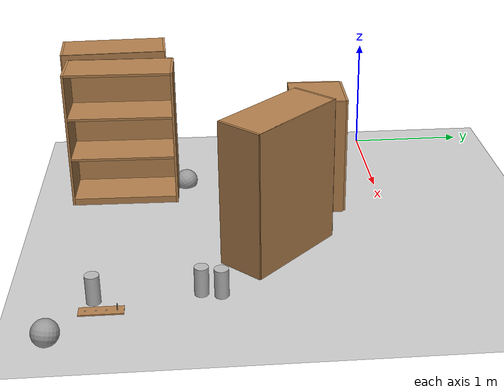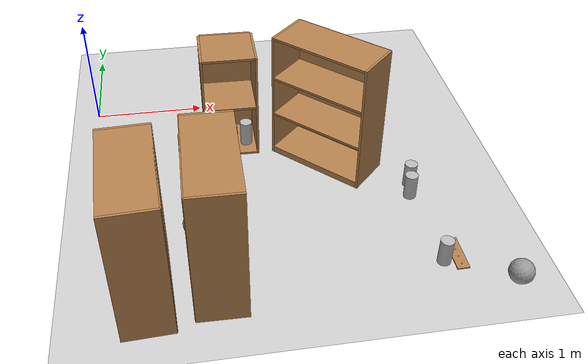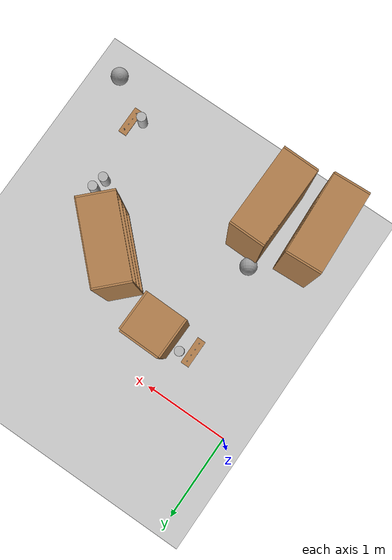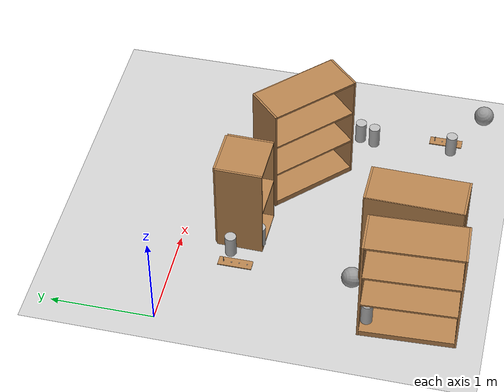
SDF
<sdf version="1.6">
 <world name="default">
  <model name="ground_plane">
   <static>1</static>
   <link name="link">
    <collision name="collision">
     <geometry><plane><normal>0 0 1</normal><size>100 100</size></plane></geometry>
     <surface><friction><ode><mu>100</mu><mu2>50</mu2></ode></friction></surface>
    </collision>
    <visual name="visual">
     <cast_shadows>0</cast_shadows>
     <geometry><plane><normal>0 0 1</normal><size>100 100</size></plane></geometry>
     <material>
      <script><uri>file://media/materials/scripts/gazebo.material</uri><name>Gazebo/Grey</name></script>
     </material>
    </visual>
   </link>
  </model>
  <model name="bookshelf_0">
   <static>1</static>
   <link name="link">
    <inertial><mass>1</mass></inertial>
    <collision name="back">
     <pose>0 0.005 0.6 0 -0 0</pose>
     <geometry><box><size>0.9 0.01 1.2</size></box></geometry>
    </collision>
    <visual name="visual1">
     <pose>0 0.005 0.6 0 -0 0</pose>
     <geometry><box><size>0.9 0.01 1.2</size></box></geometry>
     <material>
      <script><uri>file://media/materials/scripts/gazebo.material</uri><name>Gazebo/Wood</name></script>
     </material>
    </visual>
    <collision name="left_side">
     <pose>0.45 -0.195 0.6 0 -0 0</pose>
     <geometry><box><size>0.02 0.4 1.2</size></box></geometry>
    </collision>
    <visual name="visual2">
     <pose>0.45 -0.195 0.6 0 -0 0</pose>
     <geometry><box><size>0.02 0.4 1.2</size></box></geometry>
     <material>
      <script><uri>file://media/materials/scripts/gazebo.material</uri><name>Gazebo/Wood</name></script>
     </material>
    </visual>
    <collision name="right_side">
     <pose>-0.45 -0.195 0.6 0 -0 0</pose>
     <geometry><box><size>0.02 0.4 1.2</size></box></geometry>
    </collision>
    <visual name="visual3">
     <pose>-0.45 -0.195 0.6 0 -0 0</pose>
     <geometry><box><size>0.02 0.4 1.2</size></box></geometry>
     <material>
      <script><uri>file://media/materials/scripts/gazebo.material</uri><name>Gazebo/Wood</name></script>
     </material>
    </visual>
    <collision name="bottom">
     <pose>0 -0.195 0.03 0 -0 0</pose>
     <geometry><box><size>0.88 0.4 0.06</size></box></geometry>
    </collision>
    <visual name="visual4">
     <pose>0 -0.195 0.03 0 -0 0</pose>
     <geometry><box><size>0.88 0.4 0.06</size></box></geometry>
     <material>
      <script><uri>file://media/materials/scripts/gazebo.material</uri><name>Gazebo/Wood</name></script>
     </material>
    </visual>
    <collision name="top">
     <pose>0 -0.195 1.19 0 -0 0</pose>
     <geometry><box><size>0.88 0.4 0.02</size></box></geometry>
    </collision>
    <visual name="visual5">
     <pose>0 -0.195 1.19 0 -0 0</pose>
     <geometry><box><size>0.88 0.4 0.02</size></box></geometry>
     <material>
      <script><uri>file://media/materials/scripts/gazebo.material</uri><name>Gazebo/Wood</name></script>
     </material>
    </visual>
    <collision name="low_shelf">
     <pose>0 -0.195 0.43 0 -0 0</pose>
     <geometry><box><size>0.88 0.4 0.02</size></box></geometry>
    </collision>
    <visual name="visual6">
     <pose>0 -0.195 0.43 0 -0 0</pose>
     <geometry><box><size>0.88 0.4 0.02</size></box></geometry>
     <material>
      <script><uri>file://media/materials/scripts/gazebo.material</uri><name>Gazebo/Wood</name></script>
     </material>
    </visual>
    <collision name="high_shelf">
     <pose>0 -0.195 0.8 0 -0 0</pose>
     <geometry><box><size>0.88 0.4 0.02</size></box></geometry>
    </collision>
    <visual name="visual7">
     <pose>0 -0.195 0.8 0 -0 0</pose>
     <geometry><box><size>0.88 0.4 0.02</size></box></geometry>
     <material>
      <script><uri>file://media/materials/scripts/gazebo.material</uri><name>Gazebo/Wood</name></script>
     </material>
    </visual>
   </link>
   <pose>0.619209 -2.30664 0 0 0 -1.52324</pose>
  </model>
  <model name="beer_7">
   <link name="link">
    <pose>0 0 0.115 0 -0 0</pose>
    <inertial>
     <mass>0.39</mass>
     <inertia><ixx>0.00058</ixx><ixy>0</ixy><ixz>0</ixz><iyy>0.00058</iyy><iyz>0</iyz><izz>0.00019</izz></inertia>
    </inertial>
    <collision name="collision">
     <geometry><cylinder><radius>0.055</radius><length>0.23</length></cylinder></geometry>
    </collision>
    <visual name="visual">
     <geometry><cylinder><radius>0.055</radius><length>0.23</length></cylinder></geometry>
     <material>
      <script>
       <uri>model://beer/materials/scripts</uri>
       <uri>model://beer/materials/textures</uri>
       <name>Beer/Diffuse</name>
      </script>
     </material>
    </visual>
   </link>
   <pose>0.346391 -1.9342 0.059995 6.2e-05 6.2e-05 -0.62838</pose>
  </model>
  <model name="bookshelf_1">
   <static>1</static>
   <link name="link">
    <inertial><mass>1</mass></inertial>
    <collision name="back">
     <pose>0 0.005 0.6 0 -0 0</pose>
     <geometry><box><size>0.9 0.01 1.2</size></box></geometry>
    </collision>
    <visual name="visual1">
     <pose>0 0.005 0.6 0 -0 0</pose>
     <geometry><box><size>0.9 0.01 1.2</size></box></geometry>
     <material>
      <script><uri>file://media/materials/scripts/gazebo.material</uri><name>Gazebo/Wood</name></script>
     </material>
    </visual>
    <collision name="left_side">
     <pose>0.45 -0.195 0.6 0 -0 0</pose>
     <geometry><box><size>0.02 0.4 1.2</size></box></geometry>
    </collision>
    <visual name="visual2">
     <pose>0.45 -0.195 0.6 0 -0 0</pose>
     <geometry><box><size>0.02 0.4 1.2</size></box></geometry>
     <material>
      <script><uri>file://media/materials/scripts/gazebo.material</uri><name>Gazebo/Wood</name></script>
     </material>
    </visual>
    <collision name="right_side">
     <pose>-0.45 -0.195 0.6 0 -0 0</pose>
     <geometry><box><size>0.02 0.4 1.2</size></box></geometry>
    </collision>
    <visual name="visual3">
     <pose>-0.45 -0.195 0.6 0 -0 0</pose>
     <geometry><box><size>0.02 0.4 1.2</size></box></geometry>
     <material>
      <script><uri>file://media/materials/scripts/gazebo.material</uri><name>Gazebo/Wood</name></script>
     </material>
    </visual>
    <collision name="bottom">
     <pose>0 -0.195 0.03 0 -0 0</pose>
     <geometry><box><size>0.88 0.4 0.06</size></box></geometry>
    </collision>
    <visual name="visual4">
     <pose>0 -0.195 0.03 0 -0 0</pose>
     <geometry><box><size>0.88 0.4 0.06</size></box></geometry>
     <material>
      <script><uri>file://media/materials/scripts/gazebo.material</uri><name>Gazebo/Wood</name></script>
     </material>
    </visual>
    <collision name="top">
     <pose>0 -0.195 1.19 0 -0 0</pose>
     <geometry><box><size>0.88 0.4 0.02</size></box></geometry>
    </collision>
    <visual name="visual5">
     <pose>0 -0.195 1.19 0 -0 0</pose>
     <geometry><box><size>0.88 0.4 0.02</size></box></geometry>
     <material>
      <script><uri>file://media/materials/scripts/gazebo.material</uri><name>Gazebo/Wood</name></script>
     </material>
    </visual>
    <collision name="low_shelf">
     <pose>0 -0.195 0.43 0 -0 0</pose>
     <geometry><box><size>0.88 0.4 0.02</size></box></geometry>
    </collision>
    <visual name="visual6">
     <pose>0 -0.195 0.43 0 -0 0</pose>
     <geometry><box><size>0.88 0.4 0.02</size></box></geometry>
     <material>
      <script><uri>file://media/materials/scripts/gazebo.material</uri><name>Gazebo/Wood</name></script>
     </material>
    </visual>
    <collision name="high_shelf">
     <pose>0 -0.195 0.8 0 -0 0</pose>
     <geometry><box><size>0.88 0.4 0.02</size></box></geometry>
    </collision>
    <visual name="visual7">
     <pose>0 -0.195 0.8 0 -0 0</pose>
     <geometry><box><size>0.88 0.4 0.02</size></box></geometry>
     <material>
      <script><uri>file://media/materials/scripts/gazebo.material</uri><name>Gazebo/Wood</name></script>
     </material>
    </visual>
   </link>
   <pose>0.794142 -2.23341 0 0 -0 1.55315</pose>
  </model>
  <model name="cabinet_0">
   <static>1</static>
   <link name="cabinet_bottom_plate">
    <inertial>
     <pose>0 0 -1 0 -0 0</pose>
     <inertia><ixx>2.05</ixx><ixy>0</ixy><ixz>0</ixz><iyy>2.05</iyy><iyz>0</iyz><izz>2.05</izz></inertia>
     <mass>25</mass>
    </inertial>
    <collision name="cabinet_bottom_plate_geom">
     <pose>0 0 0.01 0 -0 0</pose>
     <geometry><box><size>0.45 0.45 0.02</size></box></geometry>
    </collision>
    <visual name="cabinet_bottom_plate_geom_visual">
     <pose>0 0 0.01 0 -0 0</pose>
     <geometry><box><size>0.45 0.45 0.02</size></box></geometry>
     <material>
      <script><uri>file://media/materials/scripts/gazebo.material</uri><name>Gazebo/Wood</name></script>
     </material>
    </visual>
    <collision name="cabinet_bottom_plate_geom_cabinet_back_plate">
     <pose>0.235 0 0.51 0 -0 0</pose>
     <geometry><box><size>0.02 0.45 1.02</size></box></geometry>
    </collision>
    <visual name="cabinet_bottom_plate_geom_cabinet_back_plate_visual">
     <pose>0.235 0 0.51 0 -0 0</pose>
     <geometry><box><size>0.02 0.45 1.02</size></box></geometry>
     <material>
      <script><uri>file://media/materials/scripts/gazebo.material</uri><name>Gazebo/Wood</name></script>
     </material>
    </visual>
    <collision name="cabinet_bottom_plate_geom_cabinet_left_plate">
     <pose>0 0.235 0.51 0 -0 0</pose>
     <geometry><box><size>0.45 0.02 1.02</size></box></geometry>
    </collision>
    <visual name="cabinet_bottom_plate_geom_cabinet_left_plate_visual">
     <pose>0 0.235 0.51 0 -0 0</pose>
     <geometry><box><size>0.45 0.02 1.02</size></box></geometry>
     <material>
      <script><uri>file://media/materials/scripts/gazebo.material</uri><name>Gazebo/Wood</name></script>
     </material>
    </visual>
    <collision name="cabinet_bottom_plate_geom_cabinet_middle_plate">
     <pose>0 0 0.51 0 -0 0</pose>
     <geometry><box><size>0.45 0.45 0.02</size></box></geometry>
    </collision>
    <visual name="cabinet_bottom_plate_geom_cabinet_middle_plate_visual">
     <pose>0 0 0.51 0 -0 0</pose>
     <geometry><box><size>0.45 0.45 0.02</size></box></geometry>
     <material>
      <script><uri>file://media/materials/scripts/gazebo.material</uri><name>Gazebo/Wood</name></script>
     </material>
    </visual>
    <collision name="cabinet_bottom_plate_geom_cabinet_right_plate">
     <pose>0 -0.235 0.51 0 -0 0</pose>
     <geometry><box><size>0.45 0.02 1.02</size></box></geometry>
    </collision>
    <visual name="cabinet_bottom_plate_geom_cabinet_right_plate_visual">
     <pose>0 -0.235 0.51 0 -0 0</pose>
     <geometry><box><size>0.45 0.02 1.02</size></box></geometry>
     <material>
      <script><uri>file://media/materials/scripts/gazebo.material</uri><name>Gazebo/Wood</name></script>
     </material>
    </visual>
    <collision name="cabinet_bottom_plate_geom_cabinet_top_plate">
     <pose>0 0 1.01 0 -0 0</pose>
     <geometry><box><size>0.45 0.45 0.02</size></box></geometry>
    </collision>
    <visual name="cabinet_bottom_plate_geom_cabinet_top_plate_visual">
     <pose>0 0 1.01 0 -0 0</pose>
     <geometry><box><size>0.45 0.45 0.02</size></box></geometry>
     <material>
      <script><uri>file://media/materials/scripts/gazebo.material</uri><name>Gazebo/Wood</name></script>
     </material>
    </visual>
   </link>
   <pose>1.25355 -0.582326 0 0 -0 1.55362</pose>
  </model>
  <model name="bookshelf_2">
   <static>1</static>
   <link name="link">
    <inertial><mass>1</mass></inertial>
    <collision name="back">
     <pose>0 0.005 0.6 0 -0 0</pose>
     <geometry><box><size>0.9 0.01 1.2</size></box></geometry>
    </collision>
    <visual name="visual1">
     <pose>0 0.005 0.6 0 -0 0</pose>
     <geometry><box><size>0.9 0.01 1.2</size></box></geometry>
     <material>
      <script><uri>file://media/materials/scripts/gazebo.material</uri><name>Gazebo/Wood</name></script>
     </material>
    </visual>
    <collision name="left_side">
     <pose>0.45 -0.195 0.6 0 -0 0</pose>
     <geometry><box><size>0.02 0.4 1.2</size></box></geometry>
    </collision>
    <visual name="visual2">
     <pose>0.45 -0.195 0.6 0 -0 0</pose>
     <geometry><box><size>0.02 0.4 1.2</size></box></geometry>
     <material>
      <script><uri>file://media/materials/scripts/gazebo.material</uri><name>Gazebo/Wood</name></script>
     </material>
    </visual>
    <collision name="right_side">
     <pose>-0.45 -0.195 0.6 0 -0 0</pose>
     <geometry><box><size>0.02 0.4 1.2</size></box></geometry>
    </collision>
    <visual name="visual3">
     <pose>-0.45 -0.195 0.6 0 -0 0</pose>
     <geometry><box><size>0.02 0.4 1.2</size></box></geometry>
     <material>
      <script><uri>file://media/materials/scripts/gazebo.material</uri><name>Gazebo/Wood</name></script>
     </material>
    </visual>
    <collision name="bottom">
     <pose>0 -0.195 0.03 0 -0 0</pose>
     <geometry><box><size>0.88 0.4 0.06</size></box></geometry>
    </collision>
    <visual name="visual4">
     <pose>0 -0.195 0.03 0 -0 0</pose>
     <geometry><box><size>0.88 0.4 0.06</size></box></geometry>
     <material>
      <script><uri>file://media/materials/scripts/gazebo.material</uri><name>Gazebo/Wood</name></script>
     </material>
    </visual>
    <collision name="top">
     <pose>0 -0.195 1.19 0 -0 0</pose>
     <geometry><box><size>0.88 0.4 0.02</size></box></geometry>
    </collision>
    <visual name="visual5">
     <pose>0 -0.195 1.19 0 -0 0</pose>
     <geometry><box><size>0.88 0.4 0.02</size></box></geometry>
     <material>
      <script><uri>file://media/materials/scripts/gazebo.material</uri><name>Gazebo/Wood</name></script>
     </material>
    </visual>
    <collision name="low_shelf">
     <pose>0 -0.195 0.43 0 -0 0</pose>
     <geometry><box><size>0.88 0.4 0.02</size></box></geometry>
    </collision>
    <visual name="visual6">
     <pose>0 -0.195 0.43 0 -0 0</pose>
     <geometry><box><size>0.88 0.4 0.02</size></box></geometry>
     <material>
      <script><uri>file://media/materials/scripts/gazebo.material</uri><name>Gazebo/Wood</name></script>
     </material>
    </visual>
    <collision name="high_shelf">
     <pose>0 -0.195 0.8 0 -0 0</pose>
     <geometry><box><size>0.88 0.4 0.02</size></box></geometry>
    </collision>
    <visual name="visual7">
     <pose>0 -0.195 0.8 0 -0 0</pose>
     <geometry><box><size>0.88 0.4 0.02</size></box></geometry>
     <material>
      <script><uri>file://media/materials/scripts/gazebo.material</uri><name>Gazebo/Wood</name></script>
     </material>
    </visual>
   </link>
   <pose>2.22399 -0.837147 0 0 0 -0.779094</pose>
  </model>
  <model name="beer_9">
   <link name="link">
    <pose>0 0 0.115 0 -0 0</pose>
    <inertial>
     <mass>0.39</mass>
     <inertia><ixx>0.00058</ixx><ixy>0</ixy><ixz>0</ixz><iyy>0.00058</iyy><iyz>0</iyz><izz>0.00019</izz></inertia>
    </inertial>
    <collision name="collision">
     <geometry><cylinder><radius>0.055</radius><length>0.23</length></cylinder></geometry>
    </collision>
    <visual name="visual">
     <geometry><cylinder><radius>0.055</radius><length>0.23</length></cylinder></geometry>
     <material>
      <script>
       <uri>model://beer/materials/scripts</uri>
       <uri>model://beer/materials/textures</uri>
       <name>Beer/Diffuse</name>
      </script>
     </material>
    </visual>
   </link>
   <pose>1.12296 -0.65444 0.019993 -4.3e-05 3.8e-05 -0.001916</pose>
  </model>
  <model name="beer_10">
   <link name="link">
    <pose>0 0 0.115 0 -0 0</pose>
    <inertial>
     <mass>0.39</mass>
     <inertia><ixx>0.00058</ixx><ixy>0</ixy><ixz>0</ixz><iyy>0.00058</iyy><iyz>0</iyz><izz>0.00019</izz></inertia>
    </inertial>
    <collision name="collision">
     <geometry><cylinder><radius>0.055</radius><length>0.23</length></cylinder></geometry>
    </collision>
    <visual name="visual">
     <geometry><cylinder><radius>0.055</radius><length>0.23</length></cylinder></geometry>
     <material>
      <script>
       <uri>model://beer/materials/scripts</uri>
       <uri>model://beer/materials/textures</uri>
       <name>Beer/Diffuse</name>
      </script>
     </material>
    </visual>
   </link>
   <pose>1.25396 -0.68606 0.019992 4e-05 3e-06 0.002688</pose>
  </model>
  <model name="beer_11">
   <link name="link">
    <pose>0 0 0.115 0 -0 0</pose>
    <inertial>
     <mass>0.39</mass>
     <inertia><ixx>0.00058</ixx><ixy>0</ixy><ixz>0</ixz><iyy>0.00058</iyy><iyz>0</iyz><izz>0.00019</izz></inertia>
    </inertial>
    <collision name="collision">
     <geometry><cylinder><radius>0.055</radius><length>0.23</length></cylinder></geometry>
    </collision>
    <visual name="visual">
     <geometry><cylinder><radius>0.055</radius><length>0.23</length></cylinder></geometry>
     <material>
      <script>
       <uri>model://beer/materials/scripts</uri>
       <uri>model://beer/materials/textures</uri>
       <name>Beer/Diffuse</name>
      </script>
     </material>
    </visual>
   </link>
   <pose>1.39382 -0.647695 0.019992 1.4e-05 -2.3e-05 -0.002493</pose>
  </model>
  <model name="beer_12">
   <link name="link">
    <pose>0 0 0.115 0 -0 0</pose>
    <inertial>
     <mass>0.39</mass>
     <inertia><ixx>0.00058</ixx><ixy>0</ixy><ixz>0</ixz><iyy>0.00058</iyy><iyz>0</iyz><izz>0.00019</izz></inertia>
    </inertial>
    <collision name="collision">
     <geometry><cylinder><radius>0.055</radius><length>0.23</length></cylinder></geometry>
    </collision>
    <visual name="visual">
     <geometry><cylinder><radius>0.055</radius><length>0.23</length></cylinder></geometry>
     <material>
      <script>
       <uri>model://beer/materials/scripts</uri>
       <uri>model://beer/materials/textures</uri>
       <name>Beer/Diffuse</name>
      </script>
     </material>
    </visual>
   </link>
   <pose>1.23576 -0.463244 0.020002 3e-06 -4.6e-05 0.001088</pose>
  </model>
  <model name="beer_13">
   <link name="link">
    <pose>0 0 0.115 0 -0 0</pose>
    <inertial>
     <mass>0.39</mass>
     <inertia><ixx>0.00058</ixx><ixy>0</ixy><ixz>0</ixz><iyy>0.00058</iyy><iyz>0</iyz><izz>0.00019</izz></inertia>
    </inertial>
    <collision name="collision">
     <geometry><cylinder><radius>0.055</radius><length>0.23</length></cylinder></geometry>
    </collision>
    <visual name="visual">
     <geometry><cylinder><radius>0.055</radius><length>0.23</length></cylinder></geometry>
     <material>
      <script>
       <uri>model://beer/materials/scripts</uri>
       <uri>model://beer/materials/textures</uri>
       <name>Beer/Diffuse</name>
      </script>
     </material>
    </visual>
   </link>
   <pose>1.09031 -0.759486 0.02 3e-06 7e-06 -0.059345</pose>
  </model>
  <model name="beer_14">
   <link name="link">
    <pose>0 0 0.115 0 -0 0</pose>
    <inertial>
     <mass>0.39</mass>
     <inertia><ixx>0.00058</ixx><ixy>0</ixy><ixz>0</ixz><iyy>0.00058</iyy><iyz>0</iyz><izz>0.00019</izz></inertia>
    </inertial>
    <collision name="collision">
     <geometry><cylinder><radius>0.055</radius><length>0.23</length></cylinder></geometry>
    </collision>
    <visual name="visual">
     <geometry><cylinder><radius>0.055</radius><length>0.23</length></cylinder></geometry>
     <material>
      <script>
       <uri>model://beer/materials/scripts</uri>
       <uri>model://beer/materials/textures</uri>
       <name>Beer/Diffuse</name>
      </script>
     </material>
    </visual>
   </link>
   <pose>0.931321 -0.508087 -7e-06 -1e-06 -0 -3.9e-05</pose>
  </model>
  <model name="metal_peg_board_4">
   <link name="wooden_board::base">
    <pose>0 0 0.00523 0 -0 0</pose>
    <inertial>
     <mass>0.2765</mass>
     <inertia>
      <ixx>0.0025148</ixx>
      <ixy>0</ixy>
      <ixz>0</ixz>
      <iyy>0.00024037</iyy>
      <iyz>0</iyz>
      <izz>0.00275013</izz>
     </inertia>
    </inertial>
    <collision name="collision">
     <geometry><box><size>0.1016 0.3302 0.01046</size></box></geometry>
     <surface>
      <contact>
       <poissons_ratio>0.347</poissons_ratio>
       <elastic_modulus>8.8e+09</elastic_modulus>
       <ode><kp>100000</kp><kd>100</kd><max_vel>100</max_vel><min_depth>0.001</min_depth></ode>
      </contact>
      <friction>
       <torsional>
        <coefficient>1</coefficient>
        <use_patch_radius>0</use_patch_radius>
        <surface_radius>0.01</surface_radius>
       </torsional>
      </friction>
     </surface>
    </collision>
    <visual name="visual">
     <geometry><box><size>0.1016 0.3302 0.01046</size></box></geometry>
     <material>
      <script><uri>file://media/materials/scripts/gazebo.material</uri><name>Gazebo/Wood</name></script>
     </material>
    </visual>
    <visual name="tee_nut_1">
     <pose>0 -0.116 0 0 -0 0</pose>
     <geometry><cylinder><radius>0.00635</radius><length>0.0105646</length></cylinder></geometry>
     <material>
      <script><uri>file://media/materials/scripts/gazebo.material</uri><name>Gazebo/Grey</name></script>
     </material>
    </visual>
    <visual name="tee_nut_2">
     <pose>0 -0.038 0 0 -0 0</pose>
     <geometry><cylinder><radius>0.00635</radius><length>0.0105646</length></cylinder></geometry>
     <material>
      <script><uri>file://media/materials/scripts/gazebo.material</uri><name>Gazebo/Grey</name></script>
     </material>
    </visual>
    <visual name="tee_nut_3">
     <pose>0 0.038 0 0 -0 0</pose>
     <geometry><cylinder><radius>0.00635</radius><length>0.0105646</length></cylinder></geometry>
     <material>
      <script><uri>file://media/materials/scripts/gazebo.material</uri><name>Gazebo/Grey</name></script>
     </material>
    </visual>
    <visual name="tee_nut_4">
     <pose>0 0.116 0 0 -0 0</pose>
     <geometry><cylinder><radius>0.00635</radius><length>0.0105646</length></cylinder></geometry>
     <material>
      <script><uri>file://media/materials/scripts/gazebo.material</uri><name>Gazebo/Grey</name></script>
     </material>
    </visual>
   </link>
   <link name="peg::link">
    <pose>0 0.116 0.031 0 -0 0</pose>
    <inertial>
     <mass>0.0121</mass>
     <inertia>
      <ixx>3.90898e-06</ixx>
      <ixy>0</ixy>
      <ixz>0</ixz>
      <iyy>3.90898e-06</iyy>
      <iyz>0</iyz>
      <izz>6.58845e-08</izz>
     </inertia>
    </inertial>
    <collision name="collision">
     <geometry><cylinder><radius>0.0033</radius><length>0.062</length></cylinder></geometry>
     <surface>
      <contact>
       <poissons_ratio>0.305</poissons_ratio>
       <elastic_modulus>2e+11</elastic_modulus>
       <ode><kp>100000</kp><kd>100</kd><max_vel>100</max_vel><min_depth>0.001</min_depth></ode>
      </contact>
      <friction>
       <torsional>
        <coefficient>1</coefficient>
        <use_patch_radius>0</use_patch_radius>
        <surface_radius>0.01</surface_radius>
       </torsional>
      </friction>
     </surface>
    </collision>
    <visual name="visual">
     <geometry><cylinder><radius>0.0033</radius><length>0.062</length></cylinder></geometry>
     <material>
      <script><uri>file://media/materials/scripts/gazebo.material</uri><name>Gazebo/Grey</name></script>
     </material>
    </visual>
   </link>
   <joint name="board_peg" type="revolute">
    <parent>wooden_board::base</parent>
    <child>peg::link</child>
    <axis>
     <xyz>0 0 1</xyz>
     <limit><upper>0</upper><lower>0</lower></limit>
     <use_parent_model_frame>0</use_parent_model_frame>
     <dynamics><spring_reference>0</spring_reference><spring_stiffness>0</spring_stiffness></dynamics>
    </axis>
   </joint>
   <pose>2.8753 -2.32267 -0.001004 1e-05 -0 0</pose>
  </model>
  <model name="beer_19">
   <link name="link">
    <pose>0 0 0.115 0 -0 0</pose>
    <inertial>
     <mass>0.39</mass>
     <inertia><ixx>0.00058</ixx><ixy>0</ixy><ixz>0</ixz><iyy>0.00058</iyy><iyz>0</iyz><izz>0.00019</izz></inertia>
    </inertial>
    <collision name="collision">
     <geometry><cylinder><radius>0.055</radius><length>0.23</length></cylinder></geometry>
    </collision>
    <visual name="visual">
     <geometry><cylinder><radius>0.055</radius><length>0.23</length></cylinder></geometry>
     <material>
      <script>
       <uri>model://beer/materials/scripts</uri>
       <uri>model://beer/materials/textures</uri>
       <name>Beer/Diffuse</name>
      </script>
     </material>
    </visual>
   </link>
   <pose>2.74682 -2.38617 -3e-06 1e-06 0 -1.7e-05</pose>
  </model>
  <model name="my_ball_2">
   <link name="link_0">
    <inertial>
     <mass>1</mass>
     <inertia><ixx>0.1</ixx><ixy>0</ixy><ixz>0</ixz><iyy>0.1</iyy><iyz>0</iyz><izz>0.1</izz></inertia>
    </inertial>
    <visual name="visual">
     <geometry><sphere><radius>0.1</radius></sphere></geometry>
     <material>
      <lighting>1</lighting>
      <script><uri>file://media/materials/scripts/gazebo.material</uri><name>Gazebo/Grey</name></script>
      <shader type="pixel"><normal_map>__default__</normal_map></shader>
      <ambient>1 1 1 1</ambient>
      <diffuse>1 1 1 1</diffuse>
      <specular>1 1 1 1</specular>
      <emissive>0 0 0 1</emissive>
     </material>
    </visual>
    <collision name="collision">
     <geometry><sphere><radius>0.1</radius></sphere></geometry>
     <surface>
      <friction>
       <ode><mu>1</mu><mu2>1</mu2><fdir1>0 0 0</fdir1><slip1>0</slip1><slip2>0</slip2></ode>
       <torsional>
        <coefficient>1</coefficient>
        <patch_radius>0</patch_radius>
        <surface_radius>0</surface_radius>
        <use_patch_radius>1</use_patch_radius>
        <ode><slip>0</slip></ode>
       </torsional>
      </friction>
      <bounce><restitution_coefficient>0</restitution_coefficient><threshold>1e+06</threshold></bounce>
      <contact>
       <collide_without_contact>0</collide_without_contact>
       <collide_without_contact_bitmask>1</collide_without_contact_bitmask>
       <collide_bitmask>1</collide_bitmask>
       <ode>
        <soft_cfm>0</soft_cfm>
        <soft_erp>0.2</soft_erp>
        <kp>1e+13</kp>
        <kd>1</kd>
        <max_vel>0.01</max_vel>
        <min_depth>0</min_depth>
       </ode>
       <bullet>
        <split_impulse>1</split_impulse>
        <split_impulse_penetration_threshold>-0.01</split_impulse_penetration_threshold>
        <soft_cfm>0</soft_cfm>
        <soft_erp>0.2</soft_erp>
        <kp>1e+13</kp>
        <kd>1</kd>
       </bullet>
      </contact>
     </surface>
    </collision>
   </link>
   <static>0</static>
   <pose>3.25341 -2.66224 0.099953 -0.18076 -0.353335 0.079494</pose>
  </model>
  <model name="beer_20">
   <link name="link">
    <pose>0 0 0.115 0 -0 0</pose>
    <inertial>
     <mass>0.39</mass>
     <inertia><ixx>0.00058</ixx><ixy>0</ixy><ixz>0</ixz><iyy>0.00058</iyy><iyz>0</iyz><izz>0.00019</izz></inertia>
    </inertial>
    <collision name="collision">
     <geometry><cylinder><radius>0.055</radius><length>0.23</length></cylinder></geometry>
    </collision>
    <visual name="visual">
     <geometry><cylinder><radius>0.055</radius><length>0.23</length></cylinder></geometry>
     <material>
      <script>
       <uri>model://beer/materials/scripts</uri>
       <uri>model://beer/materials/textures</uri>
       <name>Beer/Diffuse</name>
      </script>
     </material>
    </visual>
   </link>
   <pose>2.74055 -1.44972 -7e-06 -1e-06 -0 -0.011078</pose>
  </model>
  <model name="beer_21">
   <link name="link">
    <pose>0 0 0.115 0 -0 0</pose>
    <inertial>
     <mass>0.39</mass>
     <inertia><ixx>0.00058</ixx><ixy>0</ixy><ixz>0</ixz><iyy>0.00058</iyy><iyz>0</iyz><izz>0.00019</izz></inertia>
    </inertial>
    <collision name="collision">
     <geometry><cylinder><radius>0.055</radius><length>0.23</length></cylinder></geometry>
    </collision>
    <visual name="visual">
     <geometry><cylinder><radius>0.055</radius><length>0.23</length></cylinder></geometry>
     <material>
      <script>
       <uri>model://beer/materials/scripts</uri>
       <uri>model://beer/materials/textures</uri>
       <name>Beer/Diffuse</name>
      </script>
     </material>
    </visual>
   </link>
   <pose>2.70426 -1.59811 0.000777 0.004548 -0.013394 -1.2811</pose>
  </model>
  <model name="metal_peg_board_5">
   <link name="wooden_board::base">
    <pose>0 0 0.00523 0 -0 0</pose>
    <inertial>
     <mass>0.2765</mass>
     <inertia>
      <ixx>0.0025148</ixx>
      <ixy>0</ixy>
      <ixz>0</ixz>
      <iyy>0.00024037</iyy>
      <iyz>0</iyz>
      <izz>0.00275013</izz>
     </inertia>
    </inertial>
    <collision name="collision">
     <geometry><box><size>0.1016 0.3302 0.01046</size></box></geometry>
     <surface>
      <contact>
       <poissons_ratio>0.347</poissons_ratio>
       <elastic_modulus>8.8e+09</elastic_modulus>
       <ode><kp>100000</kp><kd>100</kd><max_vel>100</max_vel><min_depth>0.001</min_depth></ode>
      </contact>
      <friction>
       <torsional>
        <coefficient>1</coefficient>
        <use_patch_radius>0</use_patch_radius>
        <surface_radius>0.01</surface_radius>
       </torsional>
      </friction>
     </surface>
    </collision>
    <visual name="visual">
     <geometry><box><size>0.1016 0.3302 0.01046</size></box></geometry>
     <material>
      <script><uri>file://media/materials/scripts/gazebo.material</uri><name>Gazebo/Wood</name></script>
     </material>
    </visual>
    <visual name="tee_nut_1">
     <pose>0 -0.116 0 0 -0 0</pose>
     <geometry><cylinder><radius>0.00635</radius><length>0.0105646</length></cylinder></geometry>
     <material>
      <script><uri>file://media/materials/scripts/gazebo.material</uri><name>Gazebo/Grey</name></script>
     </material>
    </visual>
    <visual name="tee_nut_2">
     <pose>0 -0.038 0 0 -0 0</pose>
     <geometry><cylinder><radius>0.00635</radius><length>0.0105646</length></cylinder></geometry>
     <material>
      <script><uri>file://media/materials/scripts/gazebo.material</uri><name>Gazebo/Grey</name></script>
     </material>
    </visual>
    <visual name="tee_nut_3">
     <pose>0 0.038 0 0 -0 0</pose>
     <geometry><cylinder><radius>0.00635</radius><length>0.0105646</length></cylinder></geometry>
     <material>
      <script><uri>file://media/materials/scripts/gazebo.material</uri><name>Gazebo/Grey</name></script>
     </material>
    </visual>
    <visual name="tee_nut_4">
     <pose>0 0.116 0 0 -0 0</pose>
     <geometry><cylinder><radius>0.00635</radius><length>0.0105646</length></cylinder></geometry>
     <material>
      <script><uri>file://media/materials/scripts/gazebo.material</uri><name>Gazebo/Grey</name></script>
     </material>
    </visual>
   </link>
   <link name="peg::link">
    <pose>0 0.116 0.031 0 -0 0</pose>
    <inertial>
     <mass>0.0121</mass>
     <inertia>
      <ixx>3.90898e-06</ixx>
      <ixy>0</ixy>
      <ixz>0</ixz>
      <iyy>3.90898e-06</iyy>
      <iyz>0</iyz>
      <izz>6.58845e-08</izz>
     </inertia>
    </inertial>
    <collision name="collision">
     <geometry><cylinder><radius>0.0033</radius><length>0.062</length></cylinder></geometry>
     <surface>
      <contact>
       <poissons_ratio>0.305</poissons_ratio>
       <elastic_modulus>2e+11</elastic_modulus>
       <ode><kp>100000</kp><kd>100</kd><max_vel>100</max_vel><min_depth>0.001</min_depth></ode>
      </contact>
      <friction>
       <torsional>
        <coefficient>1</coefficient>
        <use_patch_radius>0</use_patch_radius>
        <surface_radius>0.01</surface_radius>
       </torsional>
      </friction>
     </surface>
    </collision>
    <visual name="visual">
     <geometry><cylinder><radius>0.0033</radius><length>0.062</length></cylinder></geometry>
     <material>
      <script><uri>file://media/materials/scripts/gazebo.material</uri><name>Gazebo/Grey</name></script>
     </material>
    </visual>
   </link>
   <joint name="board_peg" type="revolute">
    <parent>wooden_board::base</parent>
    <child>peg::link</child>
    <axis>
     <xyz>0 0 1</xyz>
     <limit><upper>0</upper><lower>0</lower></limit>
     <use_parent_model_frame>0</use_parent_model_frame>
     <dynamics><spring_reference>0</spring_reference><spring_stiffness>0</spring_stiffness></dynamics>
    </axis>
   </joint>
   <pose>0.804705 -0.582834 -0.001003 3e-06 2.4e-05 0.000197</pose>
  </model>
  <model name="my_ball_3">
   <link name="link_0">
    <inertial>
     <mass>1</mass>
     <inertia><ixx>0.1</ixx><ixy>0</ixy><ixz>0</ixz><iyy>0.1</iyy><iyz>0</iyz><izz>0.1</izz></inertia>
    </inertial>
    <visual name="visual">
     <geometry><sphere><radius>0.1</radius></sphere></geometry>
     <material>
      <lighting>1</lighting>
      <script><uri>file://media/materials/scripts/gazebo.material</uri><name>Gazebo/Grey</name></script>
      <shader type="pixel"><normal_map>__default__</normal_map></shader>
      <ambient>1 1 1 1</ambient>
      <diffuse>1 1 1 1</diffuse>
      <specular>1 1 1 1</specular>
      <emissive>0 0 0 1</emissive>
     </material>
    </visual>
    <collision name="collision">
     <geometry><sphere><radius>0.1</radius></sphere></geometry>
     <surface>
      <friction>
       <ode><mu>1</mu><mu2>1</mu2><fdir1>0 0 0</fdir1><slip1>0</slip1><slip2>0</slip2></ode>
       <torsional>
        <coefficient>1</coefficient>
        <patch_radius>0</patch_radius>
        <surface_radius>0</surface_radius>
        <use_patch_radius>1</use_patch_radius>
        <ode><slip>0</slip></ode>
       </torsional>
      </friction>
      <bounce><restitution_coefficient>0</restitution_coefficient><threshold>1e+06</threshold></bounce>
      <contact>
       <collide_without_contact>0</collide_without_contact>
       <collide_without_contact_bitmask>1</collide_without_contact_bitmask>
       <collide_bitmask>1</collide_bitmask>
       <ode>
        <soft_cfm>0</soft_cfm>
        <soft_erp>0.2</soft_erp>
        <kp>1e+13</kp>
        <kd>1</kd>
        <max_vel>0.01</max_vel>
        <min_depth>0</min_depth>
       </ode>
       <bullet>
        <split_impulse>1</split_impulse>
        <split_impulse_penetration_threshold>-0.01</split_impulse_penetration_threshold>
        <soft_cfm>0</soft_cfm>
        <soft_erp>0.2</soft_erp>
        <kp>1e+13</kp>
        <kd>1</kd>
       </bullet>
      </contact>
     </surface>
    </collision>
   </link>
   <static>0</static>
   <pose>0.840101 -1.70861 0.038878 -0.043981 -1.23013 -0.995719</pose>
  </model>
 </world>
</sdf>
